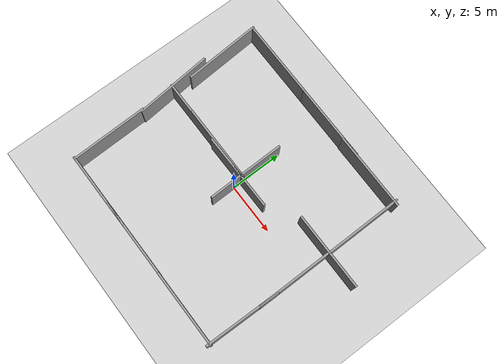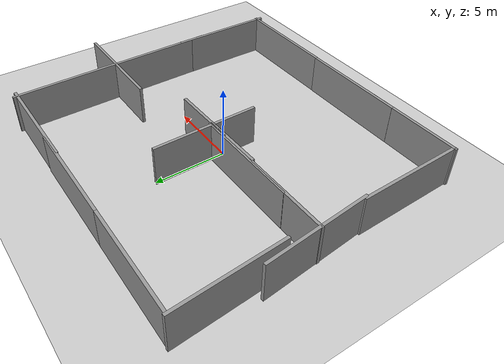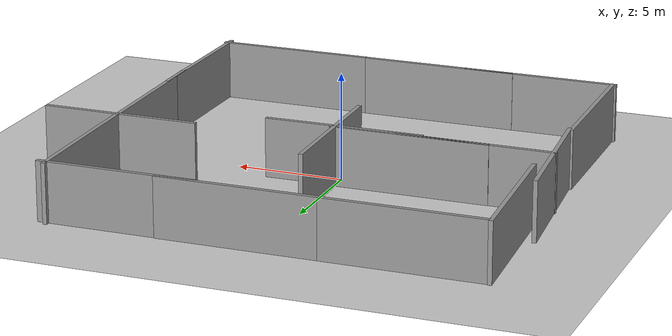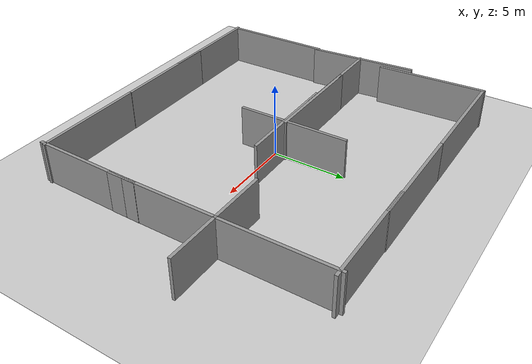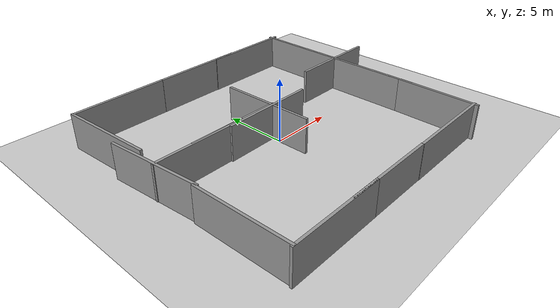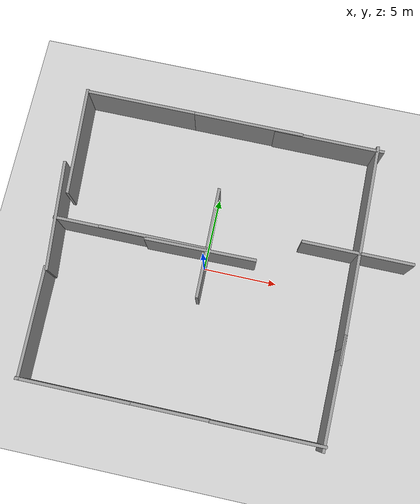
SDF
<sdf version="1.7">
 <world name="default">
  <light name="sun" type="directional">
   <pose>0 0 10 0 -0 0</pose>
   <diffuse>0.8 0.8 0.8 1</diffuse>
   <specular>0.2 0.2 0.2 1</specular>
   <attenuation>
    <range>1000</range>
    <constant>0.9</constant>
    <linear>0.01</linear>
    <quadratic>0.001</quadratic>
   </attenuation>
   <direction>-0.5 0.1 -0.9</direction>
   <spot><inner_angle>0</inner_angle><outer_angle>0</outer_angle><falloff>0</falloff></spot>
  </light>
  <model name="ground_plane">
   <static>1</static>
   <link name="link">
    <collision name="collision">
     <geometry><plane><normal>0 0 1</normal><size>100 100</size></plane></geometry>
     <surface>
      <contact><collide_bitmask>65535</collide_bitmask></contact>
      <friction><ode><mu>100</mu><mu2>50</mu2></ode></friction>
     </surface>
    </collision>
    <visual name="visual">
     <cast_shadows>0</cast_shadows>
     <geometry><plane><normal>0 0 1</normal><size>100 100</size></plane></geometry>
     <material>
      <script><uri>file://media/materials/scripts/gazebo.material</uri><name>Gazebo/Grey</name></script>
     </material>
    </visual>
   </link>
  </model>
  <gravity>0 0 -9.8</gravity>
  <magnetic_field>6e-06 2.3e-05 -4.2e-05</magnetic_field>
  <atmosphere type="adiabatic"/>
  <physics type="ode">
   <max_step_size>0.001</max_step_size>
   <real_time_factor>1</real_time_factor>
   <real_time_update_rate>1000</real_time_update_rate>
  </physics>
  <scene><ambient>0.4 0.4 0.4 1</ambient><background>0.7 0.7 0.7 1</background><shadows>1</shadows></scene>
  <spherical_coordinates>
   <surface_model>EARTH_WGS84</surface_model>
   <latitude_deg>0</latitude_deg>
   <longitude_deg>0</longitude_deg>
   <elevation>0</elevation>
   <heading_deg>0</heading_deg>
  </spherical_coordinates>
  <model name="grey_wall">
   <static>1</static>
   <link name="link">
    <pose>0 0 1.4 0 -0 0</pose>
    <collision name="collision"><geometry><box><size>7.5 0.2 2.8</size></box></geometry></collision>
    <visual name="visual">
     <cast_shadows>0</cast_shadows>
     <geometry><box><size>7.5 0.2 2.8</size></box></geometry>
     <material>
      <script>
       <uri>model://grey_wall/materials/scripts</uri>
       <uri>model://grey_wall/materials/textures</uri>
       <name>vrc/grey_wall</name>
      </script>
     </material>
    </visual>
   </link>
   <pose>-6.54393 9.92823 0 0 -0 0</pose>
  </model>
  <model name="grey_wall_0">
   <static>1</static>
   <link name="link">
    <pose>0 0 1.4 0 -0 0</pose>
    <collision name="collision"><geometry><box><size>7.5 0.2 2.8</size></box></geometry></collision>
    <visual name="visual">
     <cast_shadows>0</cast_shadows>
     <geometry><box><size>7.5 0.2 2.8</size></box></geometry>
     <material>
      <script>
       <uri>model://grey_wall/materials/scripts</uri>
       <uri>model://grey_wall/materials/textures</uri>
       <name>vrc/grey_wall</name>
      </script>
     </material>
    </visual>
   </link>
   <pose>0.931834 9.92373 0 0 -0 0</pose>
  </model>
  <model name="grey_wall_1">
   <static>1</static>
   <link name="link">
    <pose>0 0 1.4 0 -0 0</pose>
    <collision name="collision"><geometry><box><size>7.5 0.2 2.8</size></box></geometry></collision>
    <visual name="visual">
     <cast_shadows>0</cast_shadows>
     <geometry><box><size>7.5 0.2 2.8</size></box></geometry>
     <material>
      <script>
       <uri>model://grey_wall/materials/scripts</uri>
       <uri>model://grey_wall/materials/textures</uri>
       <name>vrc/grey_wall</name>
      </script>
     </material>
    </visual>
   </link>
   <pose>6.50096 9.87891 0 0 -0 0</pose>
  </model>
  <model name="grey_wall_2">
   <static>1</static>
   <link name="link">
    <pose>0 0 1.4 0 -0 0</pose>
    <collision name="collision"><geometry><box><size>7.5 0.2 2.8</size></box></geometry></collision>
    <visual name="visual">
     <cast_shadows>0</cast_shadows>
     <geometry><box><size>7.5 0.2 2.8</size></box></geometry>
     <material>
      <script>
       <uri>model://grey_wall/materials/scripts</uri>
       <uri>model://grey_wall/materials/textures</uri>
       <name>vrc/grey_wall</name>
      </script>
     </material>
    </visual>
   </link>
   <pose>9.83412 6.43558 0 0 -0 1.58134</pose>
  </model>
  <model name="grey_wall_3">
   <static>1</static>
   <link name="link">
    <pose>0 0 1.4 0 -0 0</pose>
    <collision name="collision"><geometry><box><size>7.5 0.2 2.8</size></box></geometry></collision>
    <visual name="visual">
     <cast_shadows>0</cast_shadows>
     <geometry><box><size>7.5 0.2 2.8</size></box></geometry>
     <material>
      <script>
       <uri>model://grey_wall/materials/scripts</uri>
       <uri>model://grey_wall/materials/textures</uri>
       <name>vrc/grey_wall</name>
      </script>
     </material>
    </visual>
   </link>
   <pose>6.26295 -9.87113 0 0 -0 0</pose>
  </model>
  <model name="grey_wall_4">
   <static>1</static>
   <link name="link">
    <pose>0 0 1.4 0 -0 0</pose>
    <collision name="collision"><geometry><box><size>7.5 0.2 2.8</size></box></geometry></collision>
    <visual name="visual">
     <cast_shadows>0</cast_shadows>
     <geometry><box><size>7.5 0.2 2.8</size></box></geometry>
     <material>
      <script>
       <uri>model://grey_wall/materials/scripts</uri>
       <uri>model://grey_wall/materials/textures</uri>
       <name>vrc/grey_wall</name>
      </script>
     </material>
    </visual>
   </link>
   <pose>-1.20337 -9.84924 0 0 -0 0</pose>
  </model>
  <model name="grey_wall_5">
   <static>1</static>
   <link name="link">
    <pose>0 0 1.4 0 -0 0</pose>
    <collision name="collision"><geometry><box><size>7.5 0.2 2.8</size></box></geometry></collision>
    <visual name="visual">
     <cast_shadows>0</cast_shadows>
     <geometry><box><size>7.5 0.2 2.8</size></box></geometry>
     <material>
      <script>
       <uri>model://grey_wall/materials/scripts</uri>
       <uri>model://grey_wall/materials/textures</uri>
       <name>vrc/grey_wall</name>
      </script>
     </material>
    </visual>
   </link>
   <pose>-6.28711 -9.85498 0 0 -0 0</pose>
  </model>
  <model name="grey_wall_6">
   <static>1</static>
   <link name="link">
    <pose>0 0 1.4 0 -0 0</pose>
    <collision name="collision"><geometry><box><size>7.5 0.2 2.8</size></box></geometry></collision>
    <visual name="visual">
     <cast_shadows>0</cast_shadows>
     <geometry><box><size>7.5 0.2 2.8</size></box></geometry>
     <material>
      <script>
       <uri>model://grey_wall/materials/scripts</uri>
       <uri>model://grey_wall/materials/textures</uri>
       <name>vrc/grey_wall</name>
      </script>
     </material>
    </visual>
   </link>
   <pose>-9.9251 -6.19846 0 0 -0 1.59273</pose>
  </model>
  <model name="grey_wall_7">
   <static>1</static>
   <link name="link">
    <pose>0 0 1.4 0 -0 0</pose>
    <collision name="collision"><geometry><box><size>7.5 0.2 2.8</size></box></geometry></collision>
    <visual name="visual">
     <cast_shadows>0</cast_shadows>
     <geometry><box><size>7.5 0.2 2.8</size></box></geometry>
     <material>
      <script>
       <uri>model://grey_wall/materials/scripts</uri>
       <uri>model://grey_wall/materials/textures</uri>
       <name>vrc/grey_wall</name>
      </script>
     </material>
    </visual>
   </link>
   <pose>-10.2252 0.973868 0 0 -0 1.66528</pose>
  </model>
  <model name="grey_wall_8">
   <static>1</static>
   <link name="link">
    <pose>0 0 1.4 0 -0 0</pose>
    <collision name="collision"><geometry><box><size>7.5 0.2 2.8</size></box></geometry></collision>
    <visual name="visual">
     <cast_shadows>0</cast_shadows>
     <geometry><box><size>7.5 0.2 2.8</size></box></geometry>
     <material>
      <script>
       <uri>model://grey_wall/materials/scripts</uri>
       <uri>model://grey_wall/materials/textures</uri>
       <name>vrc/grey_wall</name>
      </script>
     </material>
    </visual>
   </link>
   <pose>-10.1161 6.33539 0 0 -0 1.63585</pose>
  </model>
  <model name="grey_wall_9">
   <static>1</static>
   <link name="link">
    <pose>0 0 1.4 0 -0 0</pose>
    <collision name="collision"><geometry><box><size>7.5 0.2 2.8</size></box></geometry></collision>
    <visual name="visual">
     <cast_shadows>0</cast_shadows>
     <geometry><box><size>7.5 0.2 2.8</size></box></geometry>
     <material>
      <script>
       <uri>model://grey_wall/materials/scripts</uri>
       <uri>model://grey_wall/materials/textures</uri>
       <name>vrc/grey_wall</name>
      </script>
     </material>
    </visual>
   </link>
   <pose>-6.60336 0.820866 0 0 -0 0</pose>
  </model>
  <model name="grey_wall_10">
   <static>1</static>
   <link name="link">
    <pose>0 0 1.4 0 -0 0</pose>
    <collision name="collision"><geometry><box><size>7.5 0.2 2.8</size></box></geometry></collision>
    <visual name="visual">
     <cast_shadows>0</cast_shadows>
     <geometry><box><size>7.5 0.2 2.8</size></box></geometry>
     <material>
      <script>
       <uri>model://grey_wall/materials/scripts</uri>
       <uri>model://grey_wall/materials/textures</uri>
       <name>vrc/grey_wall</name>
      </script>
     </material>
    </visual>
   </link>
   <pose>-3.52453 0.844317 0 0 -0 0</pose>
  </model>
  <model name="grey_wall_11">
   <static>1</static>
   <link name="link">
    <pose>0 0 1.4 0 -0 0</pose>
    <collision name="collision"><geometry><box><size>7.5 0.2 2.8</size></box></geometry></collision>
    <visual name="visual">
     <cast_shadows>0</cast_shadows>
     <geometry><box><size>7.5 0.2 2.8</size></box></geometry>
     <material>
      <script>
       <uri>model://grey_wall/materials/scripts</uri>
       <uri>model://grey_wall/materials/textures</uri>
       <name>vrc/grey_wall</name>
      </script>
     </material>
    </visual>
   </link>
   <pose>0.009764 1.29424 0 0 -0 1.58618</pose>
  </model>
  <model name="grey_wall_12">
   <static>1</static>
   <link name="link">
    <pose>0 0 1.4 0 -0 0</pose>
    <collision name="collision"><geometry><box><size>7.5 0.2 2.8</size></box></geometry></collision>
    <visual name="visual">
     <cast_shadows>0</cast_shadows>
     <geometry><box><size>7.5 0.2 2.8</size></box></geometry>
     <material>
      <script>
       <uri>model://grey_wall/materials/scripts</uri>
       <uri>model://grey_wall/materials/textures</uri>
       <name>vrc/grey_wall</name>
      </script>
     </material>
    </visual>
   </link>
   <pose>9.73466 2.66329 0 0 -0 0</pose>
  </model>
  <model name="grey_wall_13">
   <static>1</static>
   <link name="link">
    <pose>0 0 1.4 0 -0 0</pose>
    <collision name="collision"><geometry><box><size>7.5 0.2 2.8</size></box></geometry></collision>
    <visual name="visual">
     <cast_shadows>0</cast_shadows>
     <geometry><box><size>7.5 0.2 2.8</size></box></geometry>
     <material>
      <script>
       <uri>model://grey_wall/materials/scripts</uri>
       <uri>model://grey_wall/materials/textures</uri>
       <name>vrc/grey_wall</name>
      </script>
     </material>
    </visual>
   </link>
   <pose>9.87701 -1.00615 0 0 -0 1.57797</pose>
  </model>
  <model name="grey_wall_14">
   <static>1</static>
   <link name="link">
    <pose>0 0 1.4 0 -0 0</pose>
    <collision name="collision"><geometry><box><size>7.5 0.2 2.8</size></box></geometry></collision>
    <visual name="visual">
     <cast_shadows>0</cast_shadows>
     <geometry><box><size>7.5 0.2 2.8</size></box></geometry>
     <material>
      <script>
       <uri>model://grey_wall/materials/scripts</uri>
       <uri>model://grey_wall/materials/textures</uri>
       <name>vrc/grey_wall</name>
      </script>
     </material>
    </visual>
   </link>
   <pose>-0.390182 0.727026 0 0 -0 0.01101</pose>
  </model>
  <model name="grey_wall_15">
   <static>1</static>
   <link name="link">
    <pose>0 0 1.4 0 -0 0</pose>
    <collision name="collision"><geometry><box><size>7.5 0.2 2.8</size></box></geometry></collision>
    <visual name="visual">
     <cast_shadows>0</cast_shadows>
     <geometry><box><size>7.5 0.2 2.8</size></box></geometry>
     <material>
      <script>
       <uri>model://grey_wall/materials/scripts</uri>
       <uri>model://grey_wall/materials/textures</uri>
       <name>vrc/grey_wall</name>
      </script>
     </material>
    </visual>
   </link>
   <pose>9.86376 -6.50792 0 0 -0 1.55939</pose>
  </model>
 </world>
</sdf>
